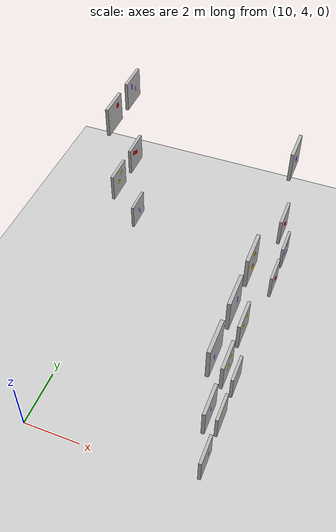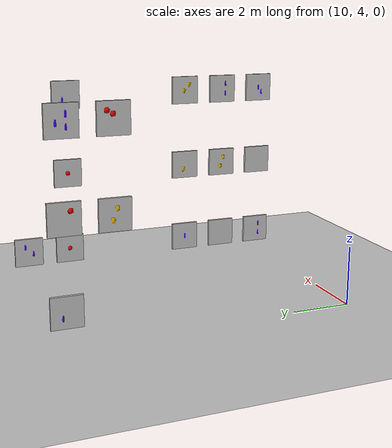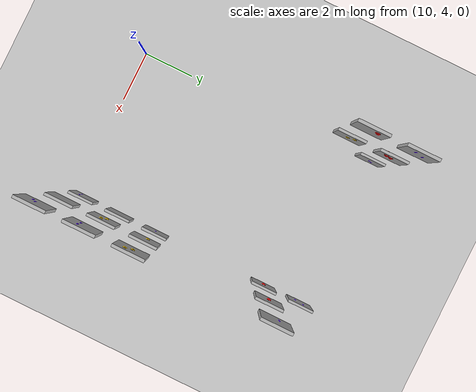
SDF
<sdf version="1.7">
 <world name="default">
  <model name="ground_plane">
   <static>1</static>
   <link name="link">
    <collision name="collision">
     <geometry><plane><normal>0 0 1</normal><size>100 100</size></plane></geometry>
     <surface>
      <contact><collide_bitmask>65535</collide_bitmask></contact>
      <friction><ode><mu>100</mu><mu2>50</mu2></ode></friction>
     </surface>
    </collision>
    <visual name="visual">
     <cast_shadows>0</cast_shadows>
     <geometry><plane><normal>0 0 1</normal><size>100 100</size></plane></geometry>
     <material>
      <script><uri>file://media/materials/scripts/gazebo.material</uri><name>Gazebo/Grey</name></script>
     </material>
    </visual>
   </link>
  </model>
  <model name="plant_29">
   <link name="eggplant_2">
    <inertial>
     <mass>1</mass>
     <inertia><ixx>10</ixx><ixy>0</ixy><ixz>0</ixz><iyy>10</iyy><iyz>0</iyz><izz>10</izz></inertia>
    </inertial>
    <collision name="eggplant_2_collision">
     <geometry>
      <mesh>
       <scale>1 1 1</scale>
       <uri>/root/sim_ws/src/icuas24_competition/models/eggplant_2/eggplant_2.dae</uri>
      </mesh>
     </geometry>
    </collision>
    <visual name="eggplant_2_visual">
     <geometry>
      <mesh>
       <scale>1 1 1</scale>
       <uri>/root/sim_ws/src/icuas24_competition/models/eggplant_2/eggplant_2.dae</uri>
      </mesh>
     </geometry>
    </visual>
   </link>
   <static>1</static>
   <pose>10 13.5 1.1 0 0 -1.5707</pose>
  </model>
  <model name="plant_31">
   <link name="pepper_4">
    <inertial>
     <mass>1</mass>
     <inertia><ixx>10</ixx><ixy>0</ixy><ixz>0</ixz><iyy>10</iyy><iyz>0</iyz><izz>10</izz></inertia>
    </inertial>
    <collision name="pepper_4_collision">
     <geometry>
      <mesh><scale>1 1 1</scale><uri>/root/sim_ws/src/icuas24_competition/models/pepper_4/pepper_4.dae</uri></mesh>
     </geometry>
    </collision>
    <visual name="pepper_4_visual">
     <geometry>
      <mesh><scale>1 1 1</scale><uri>/root/sim_ws/src/icuas24_competition/models/pepper_4/pepper_4.dae</uri></mesh>
     </geometry>
    </visual>
   </link>
   <static>1</static>
   <pose>10 12 3.9 0 0 -1.5707</pose>
  </model>
  <model name="plant_32">
   <link name="tomato_2">
    <inertial>
     <mass>1</mass>
     <inertia><ixx>10</ixx><ixy>0</ixy><ixz>0</ixz><iyy>10</iyy><iyz>0</iyz><izz>10</izz></inertia>
    </inertial>
    <collision name="tomato_2_collision">
     <geometry>
      <mesh><scale>1 1 1</scale><uri>/root/sim_ws/src/icuas24_competition/models/tomato_2/tomato_2.dae</uri></mesh>
     </geometry>
    </collision>
    <visual name="tomato_2_visual">
     <geometry>
      <mesh><scale>1 1 1</scale><uri>/root/sim_ws/src/icuas24_competition/models/tomato_2/tomato_2.dae</uri></mesh>
     </geometry>
    </visual>
   </link>
   <static>1</static>
   <pose>10 13.5 3.9 0 0 -1.5707</pose>
  </model>
  <model name="plant_34">
   <link name="tomato_2">
    <inertial>
     <mass>1</mass>
     <inertia><ixx>10</ixx><ixy>0</ixy><ixz>0</ixz><iyy>10</iyy><iyz>0</iyz><izz>10</izz></inertia>
    </inertial>
    <collision name="tomato_2_collision">
     <geometry>
      <mesh><scale>1 1 1</scale><uri>/root/sim_ws/src/icuas24_competition/models/tomato_2/tomato_2.dae</uri></mesh>
     </geometry>
    </collision>
    <visual name="tomato_2_visual">
     <geometry>
      <mesh><scale>1 1 1</scale><uri>/root/sim_ws/src/icuas24_competition/models/tomato_2/tomato_2.dae</uri></mesh>
     </geometry>
    </visual>
   </link>
   <static>1</static>
   <pose>10 12 6.7 0 -0 1.5707</pose>
  </model>
  <model name="plant_35">
   <link name="eggplant_4">
    <inertial>
     <mass>1</mass>
     <inertia><ixx>10</ixx><ixy>0</ixy><ixz>0</ixz><iyy>10</iyy><iyz>0</iyz><izz>10</izz></inertia>
    </inertial>
    <collision name="eggplant_4_collision">
     <geometry>
      <mesh>
       <scale>1 1 1</scale>
       <uri>/root/sim_ws/src/icuas24_competition/models/eggplant_4/eggplant_4.dae</uri>
      </mesh>
     </geometry>
    </collision>
    <visual name="eggplant_4_visual">
     <geometry>
      <mesh>
       <scale>1 1 1</scale>
       <uri>/root/sim_ws/src/icuas24_competition/models/eggplant_4/eggplant_4.dae</uri>
      </mesh>
     </geometry>
    </visual>
   </link>
   <static>1</static>
   <pose>10 13.5 6.7 0 -0 1.5707</pose>
  </model>
  <model name="plant_46">
   <link name="eggplant_3">
    <inertial>
     <mass>1</mass>
     <inertia><ixx>10</ixx><ixy>0</ixy><ixz>0</ixz><iyy>10</iyy><iyz>0</iyz><izz>10</izz></inertia>
    </inertial>
    <collision name="eggplant_3_collision">
     <geometry>
      <mesh>
       <scale>1 1 1</scale>
       <uri>/root/sim_ws/src/icuas24_competition/models/eggplant_3/eggplant_3.dae</uri>
      </mesh>
     </geometry>
    </collision>
    <visual name="eggplant_3_visual">
     <geometry>
      <mesh>
       <scale>1 1 1</scale>
       <uri>/root/sim_ws/src/icuas24_competition/models/eggplant_3/eggplant_3.dae</uri>
      </mesh>
     </geometry>
    </visual>
   </link>
   <static>1</static>
   <pose>16 4.5 1.1 0 -0 1.5707</pose>
  </model>
  <model name="plant_47">
   <link name="plant">
    <inertial>
     <mass>1</mass>
     <inertia><ixx>10</ixx><ixy>0</ixy><ixz>0</ixz><iyy>10</iyy><iyz>0</iyz><izz>10</izz></inertia>
    </inertial>
    <collision name="plant_collision">
     <geometry>
      <mesh><scale>1 1 1</scale><uri>/root/sim_ws/src/icuas24_competition/models/plant/plant_base.dae</uri></mesh>
     </geometry>
    </collision>
    <visual name="plant_visual">
     <geometry>
      <mesh><scale>1 1 1</scale><uri>/root/sim_ws/src/icuas24_competition/models/plant/plant_base.dae</uri></mesh>
     </geometry>
    </visual>
   </link>
   <static>1</static>
   <pose>16 6 1.1 0 0 -1.5707</pose>
  </model>
  <model name="plant_48">
   <link name="eggplant_1">
    <inertial>
     <mass>1</mass>
     <inertia><ixx>10</ixx><ixy>0</ixy><ixz>0</ixz><iyy>10</iyy><iyz>0</iyz><izz>10</izz></inertia>
    </inertial>
    <collision name="eggplant_1_collision">
     <geometry>
      <mesh>
       <scale>1 1 1</scale>
       <uri>/root/sim_ws/src/icuas24_competition/models/eggplant_1/eggplant_1.dae</uri>
      </mesh>
     </geometry>
    </collision>
    <visual name="eggplant_1_visual">
     <geometry>
      <mesh>
       <scale>1 1 1</scale>
       <uri>/root/sim_ws/src/icuas24_competition/models/eggplant_1/eggplant_1.dae</uri>
      </mesh>
     </geometry>
    </visual>
   </link>
   <static>1</static>
   <pose>16 7.5 1.1 0 -0 1.5707</pose>
  </model>
  <model name="plant_49">
   <link name="eggplant_1">
    <inertial>
     <mass>1</mass>
     <inertia><ixx>10</ixx><ixy>0</ixy><ixz>0</ixz><iyy>10</iyy><iyz>0</iyz><izz>10</izz></inertia>
    </inertial>
    <collision name="eggplant_1_collision">
     <geometry>
      <mesh>
       <scale>1 1 1</scale>
       <uri>/root/sim_ws/src/icuas24_competition/models/eggplant_1/eggplant_1.dae</uri>
      </mesh>
     </geometry>
    </collision>
    <visual name="eggplant_1_visual">
     <geometry>
      <mesh>
       <scale>1 1 1</scale>
       <uri>/root/sim_ws/src/icuas24_competition/models/eggplant_1/eggplant_1.dae</uri>
      </mesh>
     </geometry>
    </visual>
   </link>
   <static>1</static>
   <pose>16 4.5 3.9 0 0 -1.5707</pose>
  </model>
  <model name="plant_50">
   <link name="pepper_4">
    <inertial>
     <mass>1</mass>
     <inertia><ixx>10</ixx><ixy>0</ixy><ixz>0</ixz><iyy>10</iyy><iyz>0</iyz><izz>10</izz></inertia>
    </inertial>
    <collision name="pepper_4_collision">
     <geometry>
      <mesh><scale>1 1 1</scale><uri>/root/sim_ws/src/icuas24_competition/models/pepper_4/pepper_4.dae</uri></mesh>
     </geometry>
    </collision>
    <visual name="pepper_4_visual">
     <geometry>
      <mesh><scale>1 1 1</scale><uri>/root/sim_ws/src/icuas24_competition/models/pepper_4/pepper_4.dae</uri></mesh>
     </geometry>
    </visual>
   </link>
   <static>1</static>
   <pose>16 6 3.9 0 0 -1.5707</pose>
  </model>
  <model name="plant_51">
   <link name="pepper_3">
    <inertial>
     <mass>1</mass>
     <inertia><ixx>10</ixx><ixy>0</ixy><ixz>0</ixz><iyy>10</iyy><iyz>0</iyz><izz>10</izz></inertia>
    </inertial>
    <collision name="pepper_3_collision">
     <geometry>
      <mesh><scale>1 1 1</scale><uri>/root/sim_ws/src/icuas24_competition/models/pepper_3/pepper_3.dae</uri></mesh>
     </geometry>
    </collision>
    <visual name="pepper_3_visual">
     <geometry>
      <mesh><scale>1 1 1</scale><uri>/root/sim_ws/src/icuas24_competition/models/pepper_3/pepper_3.dae</uri></mesh>
     </geometry>
    </visual>
   </link>
   <static>1</static>
   <pose>16 7.5 3.9 0 0 -1.5707</pose>
  </model>
  <model name="plant_52">
   <link name="eggplant_2">
    <inertial>
     <mass>1</mass>
     <inertia><ixx>10</ixx><ixy>0</ixy><ixz>0</ixz><iyy>10</iyy><iyz>0</iyz><izz>10</izz></inertia>
    </inertial>
    <collision name="eggplant_2_collision">
     <geometry>
      <mesh>
       <scale>1 1 1</scale>
       <uri>/root/sim_ws/src/icuas24_competition/models/eggplant_2/eggplant_2.dae</uri>
      </mesh>
     </geometry>
    </collision>
    <visual name="eggplant_2_visual">
     <geometry>
      <mesh>
       <scale>1 1 1</scale>
       <uri>/root/sim_ws/src/icuas24_competition/models/eggplant_2/eggplant_2.dae</uri>
      </mesh>
     </geometry>
    </visual>
   </link>
   <static>1</static>
   <pose>16 4.5 6.7 0 -0 1.5707</pose>
  </model>
  <model name="plant_53">
   <link name="eggplant_3">
    <inertial>
     <mass>1</mass>
     <inertia><ixx>10</ixx><ixy>0</ixy><ixz>0</ixz><iyy>10</iyy><iyz>0</iyz><izz>10</izz></inertia>
    </inertial>
    <collision name="eggplant_3_collision">
     <geometry>
      <mesh>
       <scale>1 1 1</scale>
       <uri>/root/sim_ws/src/icuas24_competition/models/eggplant_3/eggplant_3.dae</uri>
      </mesh>
     </geometry>
    </collision>
    <visual name="eggplant_3_visual">
     <geometry>
      <mesh>
       <scale>1 1 1</scale>
       <uri>/root/sim_ws/src/icuas24_competition/models/eggplant_3/eggplant_3.dae</uri>
      </mesh>
     </geometry>
    </visual>
   </link>
   <static>1</static>
   <pose>16 6 6.7 0 -0 1.5707</pose>
  </model>
  <model name="plant_54">
   <link name="pepper_4">
    <inertial>
     <mass>1</mass>
     <inertia><ixx>10</ixx><ixy>0</ixy><ixz>0</ixz><iyy>10</iyy><iyz>0</iyz><izz>10</izz></inertia>
    </inertial>
    <collision name="pepper_4_collision">
     <geometry>
      <mesh><scale>1 1 1</scale><uri>/root/sim_ws/src/icuas24_competition/models/pepper_4/pepper_4.dae</uri></mesh>
     </geometry>
    </collision>
    <visual name="pepper_4_visual">
     <geometry>
      <mesh><scale>1 1 1</scale><uri>/root/sim_ws/src/icuas24_competition/models/pepper_4/pepper_4.dae</uri></mesh>
     </geometry>
    </visual>
   </link>
   <static>1</static>
   <pose>16 7.5 6.7 0 -0 1.5707</pose>
  </model>
  <model name="plant_55">
   <link name="tomato_1">
    <inertial>
     <mass>1</mass>
     <inertia><ixx>10</ixx><ixy>0</ixy><ixz>0</ixz><iyy>10</iyy><iyz>0</iyz><izz>10</izz></inertia>
    </inertial>
    <collision name="tomato_1_collision">
     <geometry>
      <mesh><scale>1 1 1</scale><uri>/root/sim_ws/src/icuas24_competition/models/tomato_1/tomato_1.dae</uri></mesh>
     </geometry>
    </collision>
    <visual name="tomato_1_visual">
     <geometry>
      <mesh><scale>1 1 1</scale><uri>/root/sim_ws/src/icuas24_competition/models/tomato_1/tomato_1.dae</uri></mesh>
     </geometry>
    </visual>
   </link>
   <static>1</static>
   <pose>16 12 1.1 0 -0 1.5707</pose>
  </model>
  <model name="plant_56">
   <link name="eggplant_4">
    <inertial>
     <mass>1</mass>
     <inertia><ixx>10</ixx><ixy>0</ixy><ixz>0</ixz><iyy>10</iyy><iyz>0</iyz><izz>10</izz></inertia>
    </inertial>
    <collision name="eggplant_4_collision">
     <geometry>
      <mesh>
       <scale>1 1 1</scale>
       <uri>/root/sim_ws/src/icuas24_competition/models/eggplant_4/eggplant_4.dae</uri>
      </mesh>
     </geometry>
    </collision>
    <visual name="eggplant_4_visual">
     <geometry>
      <mesh>
       <scale>1 1 1</scale>
       <uri>/root/sim_ws/src/icuas24_competition/models/eggplant_4/eggplant_4.dae</uri>
      </mesh>
     </geometry>
    </visual>
   </link>
   <static>1</static>
   <pose>16 13.5 1.1 0 0 -1.5707</pose>
  </model>
  <model name="plant_58">
   <link name="tomato_1">
    <inertial>
     <mass>1</mass>
     <inertia><ixx>10</ixx><ixy>0</ixy><ixz>0</ixz><iyy>10</iyy><iyz>0</iyz><izz>10</izz></inertia>
    </inertial>
    <collision name="tomato_1_collision">
     <geometry>
      <mesh><scale>1 1 1</scale><uri>/root/sim_ws/src/icuas24_competition/models/tomato_1/tomato_1.dae</uri></mesh>
     </geometry>
    </collision>
    <visual name="tomato_1_visual">
     <geometry>
      <mesh><scale>1 1 1</scale><uri>/root/sim_ws/src/icuas24_competition/models/tomato_1/tomato_1.dae</uri></mesh>
     </geometry>
    </visual>
   </link>
   <static>1</static>
   <pose>16 12 3.9 0 -0 1.5707</pose>
  </model>
  <model name="plant_61">
   <link name="eggplant_2">
    <inertial>
     <mass>1</mass>
     <inertia><ixx>10</ixx><ixy>0</ixy><ixz>0</ixz><iyy>10</iyy><iyz>0</iyz><izz>10</izz></inertia>
    </inertial>
    <collision name="eggplant_2_collision">
     <geometry>
      <mesh>
       <scale>1 1 1</scale>
       <uri>/root/sim_ws/src/icuas24_competition/models/eggplant_2/eggplant_2.dae</uri>
      </mesh>
     </geometry>
    </collision>
    <visual name="eggplant_2_visual">
     <geometry>
      <mesh>
       <scale>1 1 1</scale>
       <uri>/root/sim_ws/src/icuas24_competition/models/eggplant_2/eggplant_2.dae</uri>
      </mesh>
     </geometry>
    </visual>
   </link>
   <static>1</static>
   <pose>16 12 6.7 0 0 -1.5707</pose>
  </model>
 </world>
</sdf>
